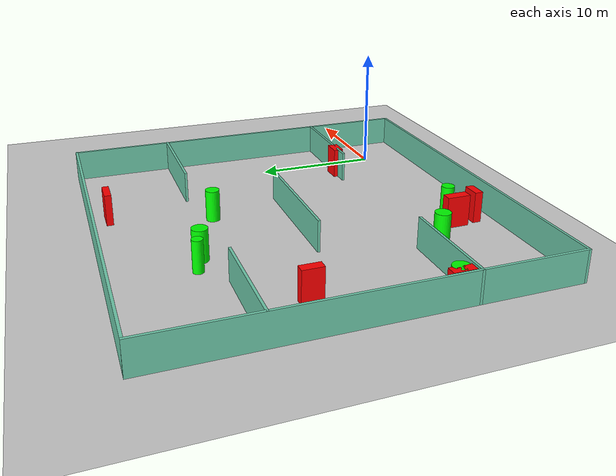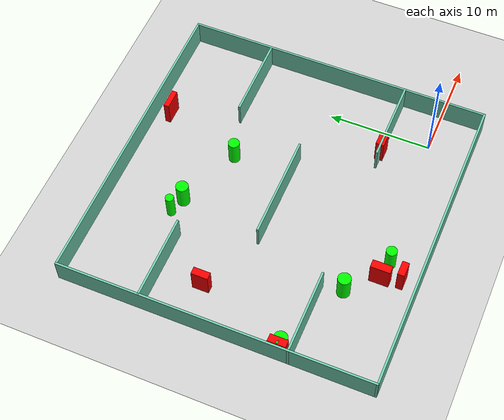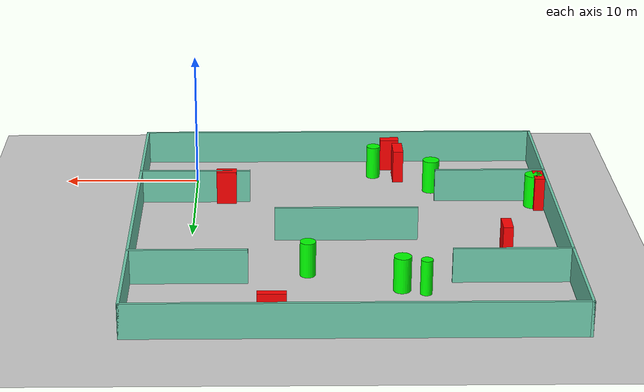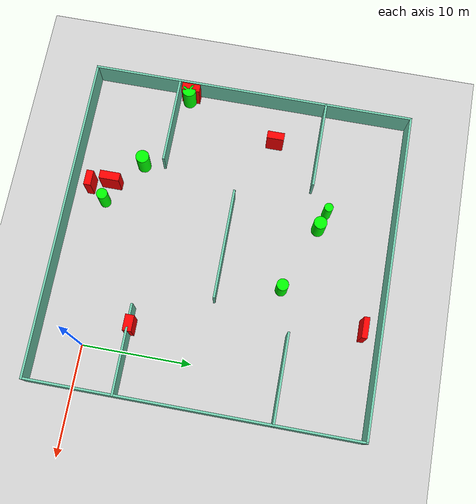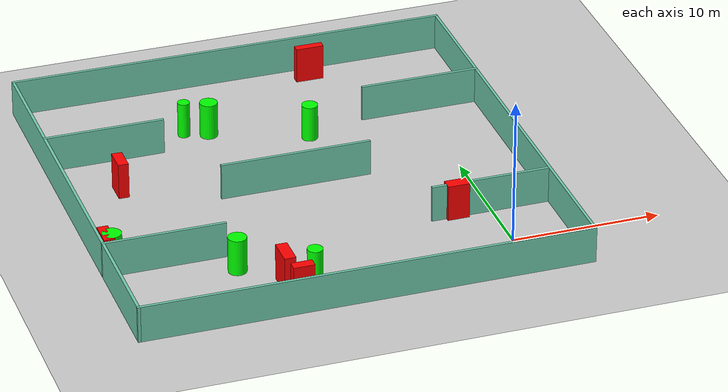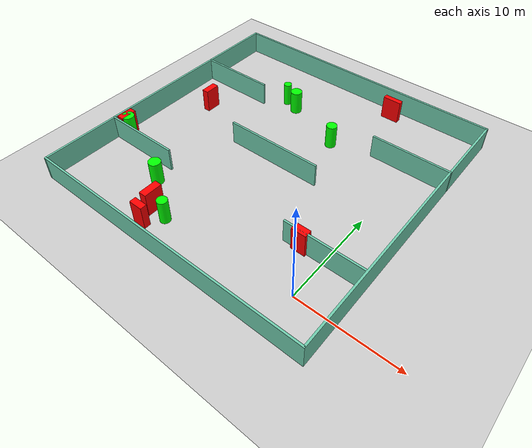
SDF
<sdf version="1.7">
 <world name="default">
  <light name="sun" type="directional">
   <pose>0 0 10 0 -0 0</pose>
   <diffuse>0.8 0.8 0.8 1</diffuse>
   <specular>0.2 0.2 0.2 1</specular>
   <attenuation>
    <range>1000</range>
    <constant>0.9</constant>
    <linear>0.01</linear>
    <quadratic>0.001</quadratic>
   </attenuation>
   <direction>-0.5 0.1 -0.9</direction>
   <spot><inner_angle>0</inner_angle><outer_angle>0</outer_angle><falloff>0</falloff></spot>
  </light>
  <model name="ground_plane">
   <static>1</static>
   <link name="link">
    <collision name="collision">
     <geometry><plane><normal>0 0 1</normal><size>100 100</size></plane></geometry>
     <surface>
      <contact><collide_bitmask>65535</collide_bitmask></contact>
      <friction><ode><mu>100</mu><mu2>50</mu2></ode></friction>
     </surface>
    </collision>
    <visual name="visual">
     <cast_shadows>0</cast_shadows>
     <geometry><plane><normal>0 0 1</normal><size>100 100</size></plane></geometry>
     <material>
      <script><uri>file://media/materials/scripts/gazebo.material</uri><name>Gazebo/Grey</name></script>
     </material>
    </visual>
   </link>
  </model>
  <gravity>0 0 -9.8</gravity>
  <magnetic_field>6e-06 2.3e-05 -4.2e-05</magnetic_field>
  <atmosphere type="adiabatic"/>
  <physics type="ode">
   <max_step_size>0.001</max_step_size>
   <real_time_factor>1</real_time_factor>
   <real_time_update_rate>1000</real_time_update_rate>
  </physics>
  <scene><ambient>0.4 0.4 0.4 1</ambient><background>0.7 0.7 0.7 1</background><shadows>1</shadows></scene>
  <spherical_coordinates>
   <surface_model>EARTH_WGS84</surface_model>
   <latitude_deg>0</latitude_deg>
   <longitude_deg>0</longitude_deg>
   <elevation>0</elevation>
   <heading_deg>0</heading_deg>
  </spherical_coordinates>
  <model name="my_base_walls">
   <link name="Wall_10">
    <collision name="Wall_10_Collision">
     <geometry><box><size>8.2 0.2 2.5</size></box></geometry>
     <pose>0 0 1.25 0 -0 0</pose>
    </collision>
    <visual name="Wall_10_Visual">
     <pose>0 0 1.25 0 -0 0</pose>
     <geometry><box><size>8.2 0.2 2.5</size></box></geometry>
     <material>
      <script><uri>file://media/materials/scripts/gazebo.material</uri><name>Gazebo/Grey</name></script>
      <ambient>0.435294 0.796078 0.67451 1</ambient>
     </material>
     <meta><layer>0</layer></meta>
    </visual>
    <pose>-11 -7 0 0 -0 0</pose>
   </link>
   <link name="Wall_12">
    <collision name="Wall_12_Collision">
     <geometry><box><size>8.2 0.2 2.5</size></box></geometry>
     <pose>0 0 1.25 0 -0 0</pose>
    </collision>
    <visual name="Wall_12_Visual">
     <pose>0 0 1.25 0 -0 0</pose>
     <geometry><box><size>8.2 0.2 2.5</size></box></geometry>
     <material>
      <script><uri>file://media/materials/scripts/gazebo.material</uri><name>Gazebo/Grey</name></script>
      <ambient>0.435294 0.796078 0.67451 1</ambient>
     </material>
     <meta><layer>0</layer></meta>
    </visual>
    <pose>-11 7 0 0 -0 0</pose>
   </link>
   <link name="Wall_14">
    <collision name="Wall_14_Collision">
     <geometry><box><size>8.2 0.2 2.5</size></box></geometry>
     <pose>0 0 1.25 0 -0 0</pose>
    </collision>
    <visual name="Wall_14_Visual">
     <pose>0 0 1.25 0 -0 0</pose>
     <geometry><box><size>8.2 0.2 2.5</size></box></geometry>
     <material>
      <script><uri>file://media/materials/scripts/gazebo.material</uri><name>Gazebo/Grey</name></script>
      <ambient>0.435294 0.796078 0.67451 1</ambient>
     </material>
     <meta><layer>0</layer></meta>
    </visual>
    <pose>11 7 0 0 -0 3.14159</pose>
   </link>
   <link name="Wall_16">
    <collision name="Wall_16_Collision">
     <geometry><box><size>10.2 0.2 2.5</size></box></geometry>
     <pose>0 0 1.25 0 -0 0</pose>
    </collision>
    <visual name="Wall_16_Visual">
     <pose>0 0 1.25 0 -0 0</pose>
     <geometry><box><size>10.2 0.2 2.5</size></box></geometry>
     <material>
      <script><uri>file://media/materials/scripts/gazebo.material</uri><name>Gazebo/Grey</name></script>
      <ambient>0.435294 0.796078 0.67451 1</ambient>
     </material>
     <meta><layer>0</layer></meta>
    </visual>
    <pose>0 0 0 0 -0 3.14159</pose>
   </link>
   <link name="Wall_2">
    <collision name="Wall_2_Collision">
     <geometry><box><size>30.2 0.2 2.5</size></box></geometry>
     <pose>0 0 1.25 0 -0 0</pose>
    </collision>
    <visual name="Wall_2_Visual">
     <pose>0 0 1.25 0 -0 0</pose>
     <geometry><box><size>30.2 0.2 2.5</size></box></geometry>
     <material>
      <script><uri>file://media/materials/scripts/gazebo.material</uri><name>Gazebo/Grey</name></script>
      <ambient>0.435294 0.796078 0.67451 1</ambient>
     </material>
     <meta><layer>0</layer></meta>
    </visual>
    <pose>0 -15 0 0 -0 3.14159</pose>
   </link>
   <link name="Wall_3">
    <collision name="Wall_3_Collision">
     <geometry><box><size>30.2 0.2 2.5</size></box></geometry>
     <pose>0 0 1.25 0 -0 0</pose>
    </collision>
    <visual name="Wall_3_Visual">
     <pose>0 0 1.25 0 -0 0</pose>
     <geometry><box><size>30.2 0.2 2.5</size></box></geometry>
     <material>
      <script><uri>file://media/materials/scripts/gazebo.material</uri><name>Gazebo/Grey</name></script>
      <ambient>0.435294 0.796078 0.67451 1</ambient>
     </material>
     <meta><layer>0</layer></meta>
    </visual>
    <pose>-15 0 0 0 -0 1.5708</pose>
   </link>
   <link name="Wall_4">
    <collision name="Wall_4_Collision">
     <geometry><box><size>30.2 0.2 2.5</size></box></geometry>
     <pose>0 0 1.25 0 -0 0</pose>
    </collision>
    <visual name="Wall_4_Visual">
     <pose>0 0 1.25 0 -0 0</pose>
     <geometry><box><size>30.2 0.2 2.5</size></box></geometry>
     <material>
      <script><uri>file://media/materials/scripts/gazebo.material</uri><name>Gazebo/Grey</name></script>
      <ambient>0.435294 0.796078 0.67451 1</ambient>
     </material>
     <meta><layer>0</layer></meta>
    </visual>
    <pose>0 15 0 0 -0 0</pose>
   </link>
   <link name="Wall_6">
    <collision name="Wall_6_Collision">
     <geometry><box><size>30.2 0.2 2.5</size></box></geometry>
     <pose>0 0 1.25 0 -0 0</pose>
    </collision>
    <visual name="Wall_6_Visual">
     <pose>0 0 1.25 0 -0 0</pose>
     <geometry><box><size>30.2 0.2 2.5</size></box></geometry>
     <material>
      <script><uri>file://media/materials/scripts/gazebo.material</uri><name>Gazebo/Grey</name></script>
      <ambient>0.435294 0.796078 0.67451 1</ambient>
     </material>
     <meta><layer>0</layer></meta>
    </visual>
    <pose>15 0 0 0 -0 1.5708</pose>
   </link>
   <link name="Wall_8">
    <collision name="Wall_8_Collision">
     <geometry><box><size>8.2 0.2 2.5</size></box></geometry>
     <pose>0 0 1.25 0 -0 0</pose>
    </collision>
    <visual name="Wall_8_Visual">
     <pose>0 0 1.25 0 -0 0</pose>
     <geometry><box><size>8.2 0.2 2.5</size></box></geometry>
     <material>
      <script><uri>file://media/materials/scripts/gazebo.material</uri><name>Gazebo/Grey</name></script>
      <ambient>0.435294 0.796078 0.67451 1</ambient>
     </material>
     <meta><layer>0</layer></meta>
    </visual>
    <pose>11 -7 0 0 -0 3.14159</pose>
   </link>
   <static>1</static>
   <pose>-11 11 0 0 -0 0</pose>
  </model>
  <model name="cylinder1">
   <static>1</static>
   <link name="link">
    <inertial>
     <mass>1</mass>
     <inertia><ixx>0.5</ixx><ixy>0</ixy><ixz>0</ixz><iyy>0.5</iyy><iyz>0</iyz><izz>1</izz></inertia>
    </inertial>
    <collision name="collision">
     <geometry><cylinder><radius>0.41086076246895886</radius><length>2.5</length></cylinder></geometry>
    </collision>
    <visual name="visual">
     <geometry><cylinder><radius>0.41086076246895886</radius><length>2.5</length></cylinder></geometry>
     <material>
      <ambient>0 1 0 1</ambient>
      <diffuse>0 1 0 1</diffuse>
      <specular>0.1 0.1 0.1 1</specular>
      <emissive>0 0 0 0</emissive>
     </material>
    </visual>
   </link>
   <pose>-16.00695113849413 19.737138149095358 1.25 0 0 0</pose>
  </model>
  <model name="cylinder2">
   <static>1</static>
   <link name="link">
    <inertial>
     <mass>1</mass>
     <inertia><ixx>0.5</ixx><ixy>0</ixy><ixz>0</ixz><iyy>0.5</iyy><iyz>0</iyz><izz>1</izz></inertia>
    </inertial>
    <collision name="collision">
     <geometry><cylinder><radius>0.5145069034927423</radius><length>2.5</length></cylinder></geometry>
    </collision>
    <visual name="visual">
     <geometry><cylinder><radius>0.5145069034927423</radius><length>2.5</length></cylinder></geometry>
     <material>
      <ambient>0 1 0 1</ambient>
      <diffuse>0 1 0 1</diffuse>
      <specular>0.1 0.1 0.1 1</specular>
      <emissive>0 0 0 0</emissive>
     </material>
    </visual>
   </link>
   <pose>-13.5713588930776 -0.8386654737685202 1.25 0 0 0</pose>
  </model>
  <model name="cylinder3">
   <static>1</static>
   <link name="link">
    <inertial>
     <mass>1</mass>
     <inertia><ixx>0.5</ixx><ixy>0</ixy><ixz>0</ixz><iyy>0.5</iyy><iyz>0</iyz><izz>1</izz></inertia>
    </inertial>
    <collision name="collision">
     <geometry><cylinder><radius>0.6022191025611947</radius><length>2.5</length></cylinder></geometry>
    </collision>
    <visual name="visual">
     <geometry><cylinder><radius>0.6022191025611947</radius><length>2.5</length></cylinder></geometry>
     <material>
      <ambient>0 1 0 1</ambient>
      <diffuse>0 1 0 1</diffuse>
      <specular>0.1 0.1 0.1 1</specular>
      <emissive>0 0 0 0</emissive>
     </material>
    </visual>
   </link>
   <pose>-14.43319160463626 19.217656632956313 1.25 0 0 0</pose>
  </model>
  <model name="cylinder4">
   <static>1</static>
   <link name="link">
    <inertial>
     <mass>1</mass>
     <inertia><ixx>0.5</ixx><ixy>0</ixy><ixz>0</ixz><iyy>0.5</iyy><iyz>0</iyz><izz>1</izz></inertia>
    </inertial>
    <collision name="collision">
     <geometry><cylinder><radius>0.6389265241673264</radius><length>2.5</length></cylinder></geometry>
    </collision>
    <visual name="visual">
     <geometry><cylinder><radius>0.6389265241673264</radius><length>2.5</length></cylinder></geometry>
     <material>
      <ambient>0 1 0 1</ambient>
      <diffuse>0 1 0 1</diffuse>
      <specular>0.1 0.1 0.1 1</specular>
      <emissive>0 0 0 0</emissive>
     </material>
    </visual>
   </link>
   <pose>-25.135113396014848 5.018190336067374 1.25 0 0 0</pose>
  </model>
  <model name="cylinder5">
   <static>1</static>
   <link name="link">
    <inertial>
     <mass>1</mass>
     <inertia><ixx>0.5</ixx><ixy>0</ixy><ixz>0</ixz><iyy>0.5</iyy><iyz>0</iyz><izz>1</izz></inertia>
    </inertial>
    <collision name="collision">
     <geometry><cylinder><radius>0.5451702990702945</radius><length>2.5</length></cylinder></geometry>
    </collision>
    <visual name="visual">
     <geometry><cylinder><radius>0.5451702990702945</radius><length>2.5</length></cylinder></geometry>
     <material>
      <ambient>0 1 0 1</ambient>
      <diffuse>0 1 0 1</diffuse>
      <specular>0.1 0.1 0.1 1</specular>
      <emissive>0 0 0 0</emissive>
     </material>
    </visual>
   </link>
   <pose>-8.156987284683435 16.78453028744292 1.25 0 0 0</pose>
  </model>
  <model name="cylinder6">
   <static>1</static>
   <link name="link">
    <inertial>
     <mass>1</mass>
     <inertia><ixx>0.5</ixx><ixy>0</ixy><ixz>0</ixz><iyy>0.5</iyy><iyz>0</iyz><izz>1</izz></inertia>
    </inertial>
    <collision name="collision">
     <geometry><cylinder><radius>0.6177994170785376</radius><length>2.5</length></cylinder></geometry>
    </collision>
    <visual name="visual">
     <geometry><cylinder><radius>0.6177994170785376</radius><length>2.5</length></cylinder></geometry>
     <material>
      <ambient>0 1 0 1</ambient>
      <diffuse>0 1 0 1</diffuse>
      <specular>0.1 0.1 0.1 1</specular>
      <emissive>0 0 0 0</emissive>
     </material>
    </visual>
   </link>
   <pose>-17.77976222650723 2.0436828869123183 1.25 0 0 0</pose>
  </model>
  <model name="box1">
   <static>1</static>
   <link name="link">
    <inertial>
     <mass>1</mass>
     <inertia><ixx>0.083</ixx><ixy>0</ixy><ixz>0</ixz><iyy>0.083</iyy><iyz>0</iyz><izz>0.083</izz></inertia>
    </inertial>
    <collision name="collision">
     <geometry><box><size>0.7698095181202558 1.8736024683798989 2.5</size></box></geometry>
    </collision>
    <visual name="visual">
     <geometry><box><size>0.7698095181202558 1.8736024683798989 2.5</size></box></geometry>
     <material>
      <ambient>1 0 0 1</ambient>
      <diffuse>1 0 0 1</diffuse>
      <specular>0.1 0.1 0.1 1</specular>
      <emissive>0 0 0 0</emissive>
     </material>
    </visual>
    <sensor name="my_contact" type="contact">
     <contact><collision>box_collision</collision><topic>__default_topic__</topic></contact>
    </sensor>
   </link>
   <pose>-15.407008257360328 -0.5323899799988911 1.25 0 0 0</pose>
  </model>
  <model name="box2">
   <static>1</static>
   <link name="link">
    <inertial>
     <mass>1</mass>
     <inertia><ixx>0.083</ixx><ixy>0</ixy><ixz>0</ixz><iyy>0.083</iyy><iyz>0</iyz><izz>0.083</izz></inertia>
    </inertial>
    <collision name="collision">
     <geometry><box><size>1.4175700150337796 0.6554397030088591 2.5</size></box></geometry>
    </collision>
    <visual name="visual">
     <geometry><box><size>1.4175700150337796 0.6554397030088591 2.5</size></box></geometry>
     <material>
      <ambient>1 0 0 1</ambient>
      <diffuse>1 0 0 1</diffuse>
      <specular>0.1 0.1 0.1 1</specular>
      <emissive>0 0 0 0</emissive>
     </material>
    </visual>
    <sensor name="my_contact" type="contact">
     <contact><collision>box_collision</collision><topic>__default_topic__</topic></contact>
    </sensor>
   </link>
   <pose>-14.876237453600933 -2.3789964197262243 1.25 0 0 0</pose>
  </model>
  <model name="box3">
   <static>1</static>
   <link name="link">
    <inertial>
     <mass>1</mass>
     <inertia><ixx>0.083</ixx><ixy>0</ixy><ixz>0</ixz><iyy>0.083</iyy><iyz>0</iyz><izz>0.083</izz></inertia>
    </inertial>
    <collision name="collision">
     <geometry><box><size>1.9084190282234552 0.5271147906026552 2.5</size></box></geometry>
    </collision>
    <visual name="visual">
     <geometry><box><size>1.9084190282234552 0.5271147906026552 2.5</size></box></geometry>
     <material>
      <ambient>1 0 0 1</ambient>
      <diffuse>1 0 0 1</diffuse>
      <specular>0.1 0.1 0.1 1</specular>
      <emissive>0 0 0 0</emissive>
     </material>
    </visual>
    <sensor name="my_contact" type="contact">
     <contact><collision>box_collision</collision><topic>__default_topic__</topic></contact>
    </sensor>
   </link>
   <pose>-5.6851931501278266 24.535778204531848 1.25 0 0 0</pose>
  </model>
  <model name="box4">
   <static>1</static>
   <link name="link">
    <inertial>
     <mass>1</mass>
     <inertia><ixx>0.083</ixx><ixy>0</ixy><ixz>0</ixz><iyy>0.083</iyy><iyz>0</iyz><izz>0.083</izz></inertia>
    </inertial>
    <collision name="collision">
     <geometry><box><size>0.7018008798294371 1.6013294621434615 2.5</size></box></geometry>
    </collision>
    <visual name="visual">
     <geometry><box><size>0.7018008798294371 1.6013294621434615 2.5</size></box></geometry>
     <material>
      <ambient>1 0 0 1</ambient>
      <diffuse>1 0 0 1</diffuse>
      <specular>0.1 0.1 0.1 1</specular>
      <emissive>0 0 0 0</emissive>
     </material>
    </visual>
    <sensor name="my_contact" type="contact">
     <contact><collision>box_collision</collision><topic>__default_topic__</topic></contact>
    </sensor>
   </link>
   <pose>-22.069411842344266 13.846191581616477 1.25 0 0 0</pose>
  </model>
  <model name="box5">
   <static>1</static>
   <link name="link">
    <inertial>
     <mass>1</mass>
     <inertia><ixx>0.083</ixx><ixy>0</ixy><ixz>0</ixz><iyy>0.083</iyy><iyz>0</iyz><izz>0.083</izz></inertia>
    </inertial>
    <collision name="collision">
     <geometry><box><size>0.7346995646806045 1.7101425813721618 2.5</size></box></geometry>
    </collision>
    <visual name="visual">
     <geometry><box><size>0.7346995646806045 1.7101425813721618 2.5</size></box></geometry>
     <material>
      <ambient>1 0 0 1</ambient>
      <diffuse>1 0 0 1</diffuse>
      <specular>0.1 0.1 0.1 1</specular>
      <emissive>0 0 0 0</emissive>
     </material>
    </visual>
    <sensor name="my_contact" type="contact">
     <contact><collision>box_collision</collision><topic>__default_topic__</topic></contact>
    </sensor>
   </link>
   <pose>-25.487018062444026 5.131114028971952 1.25 0 0 0</pose>
  </model>
  <model name="box6">
   <static>1</static>
   <link name="link">
    <inertial>
     <mass>1</mass>
     <inertia><ixx>0.083</ixx><ixy>0</ixy><ixz>0</ixz><iyy>0.083</iyy><iyz>0</iyz><izz>0.083</izz></inertia>
    </inertial>
    <collision name="collision">
     <geometry><box><size>1.4676997529628946 0.8026729502869617 2.5</size></box></geometry>
    </collision>
    <visual name="visual">
     <geometry><box><size>1.4676997529628946 0.8026729502869617 2.5</size></box></geometry>
     <material>
      <ambient>1 0 0 1</ambient>
      <diffuse>1 0 0 1</diffuse>
      <specular>0.1 0.1 0.1 1</specular>
      <emissive>0 0 0 0</emissive>
     </material>
    </visual>
    <sensor name="my_contact" type="contact">
     <contact><collision>box_collision</collision><topic>__default_topic__</topic></contact>
    </sensor>
   </link>
   <pose>-2.35320862534185 4.050790156733129 1.25 0 0 0</pose>
  </model>
 </world>
</sdf>
